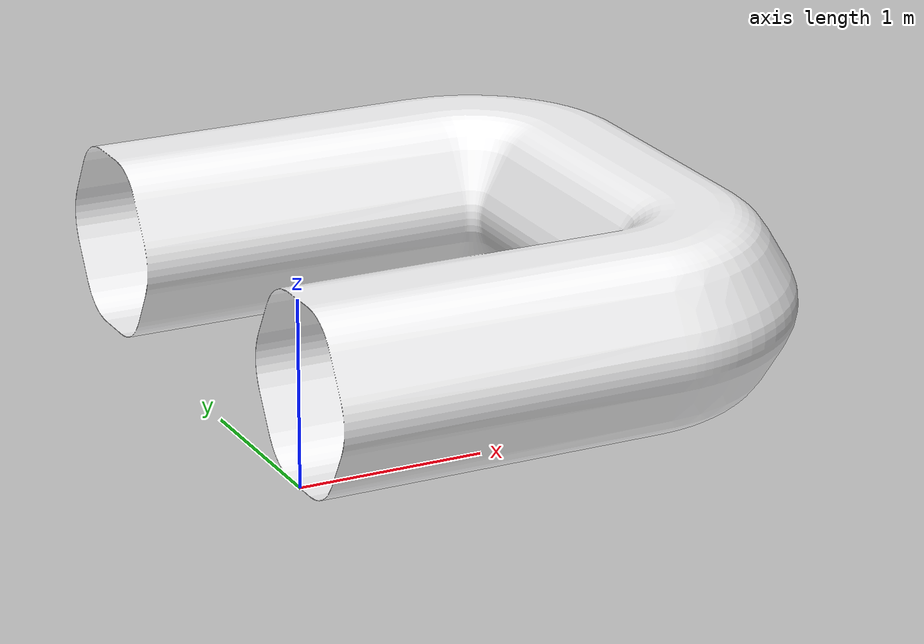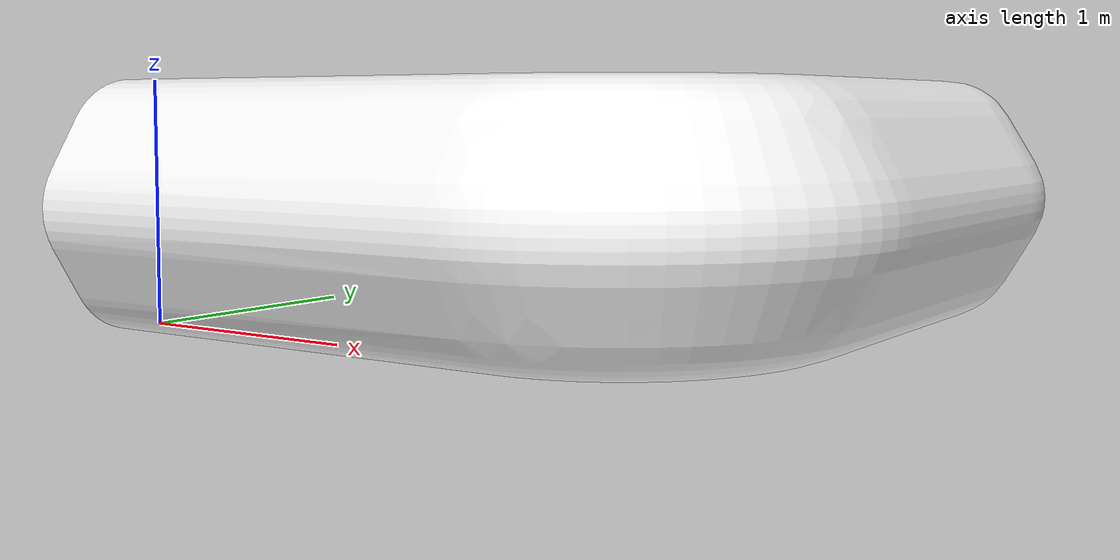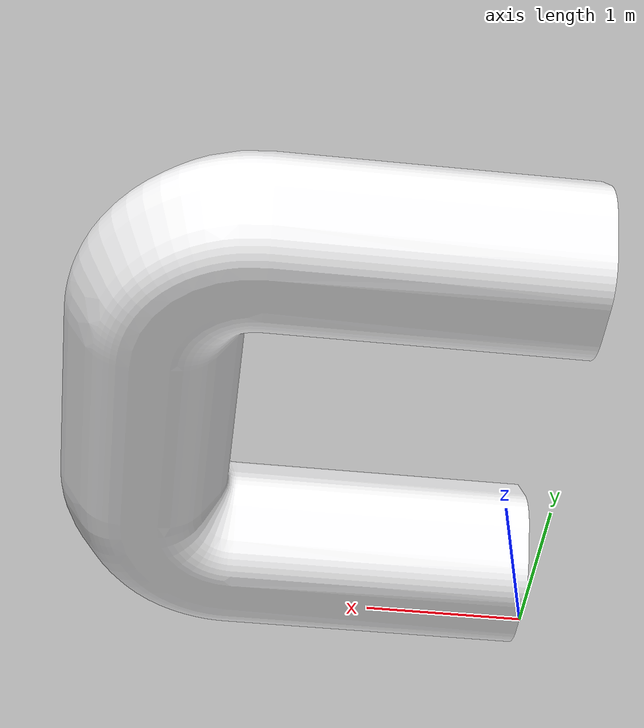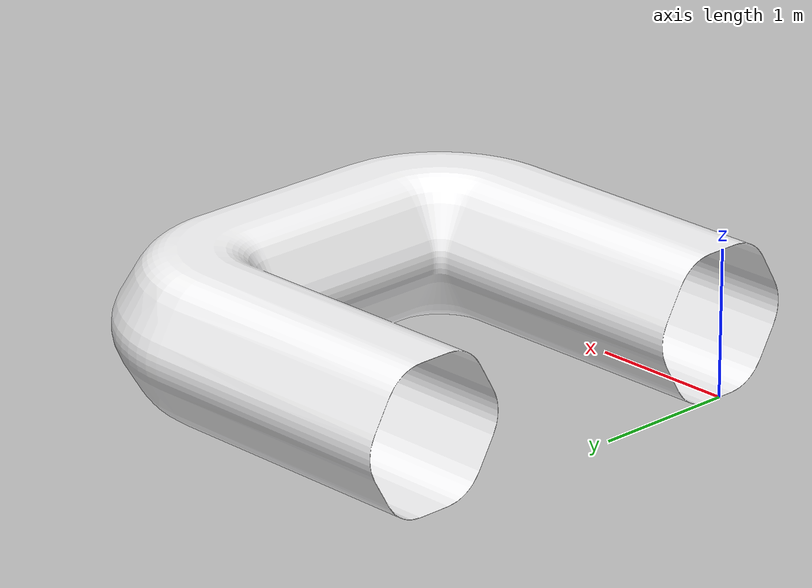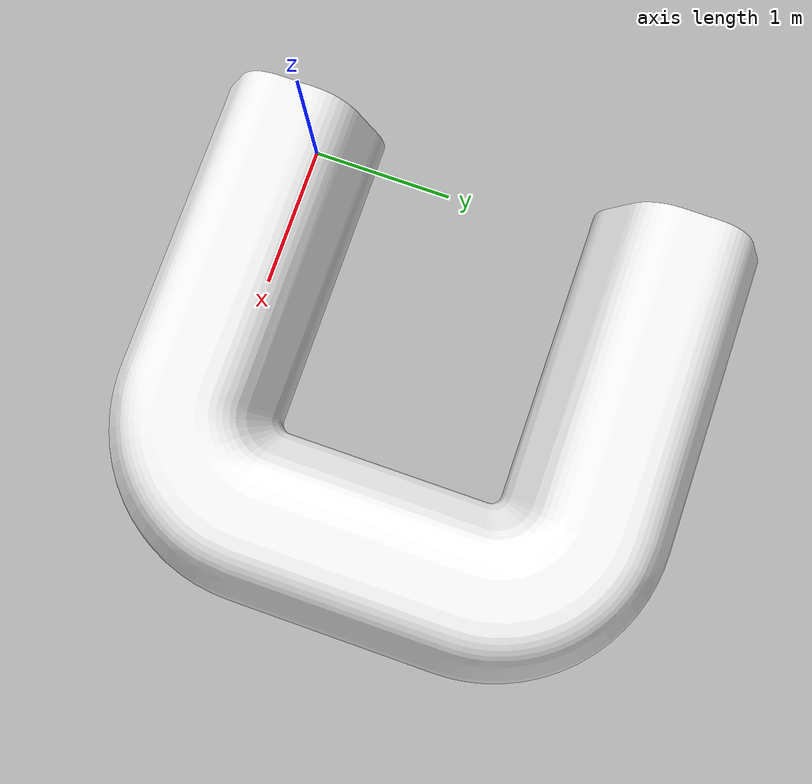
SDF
<?xml version="1.0" ?>
<sdf version="1.7">
  <model name="pipe_world">
    <static>true</static>
    <link name="link">
      <visual name="visual">
        <geometry>
          <mesh>
            <uri>model://pipe_world/meshes/hexpipewithmaterial2.dae</uri>
          </mesh>
        </geometry>
      </visual>
      <collision name="collision">
        <geometry>
          <cylinder>
            <radius>1.002</radius>
            <length>14.431791</length>
          </cylinder>
        </geometry>
        <surface>
          <contact>
            <ode/>
          </contact>
          <friction>
            <ode/>
          </friction>
        </surface>
      </collision>
    </link>
  </model>
</sdf>
